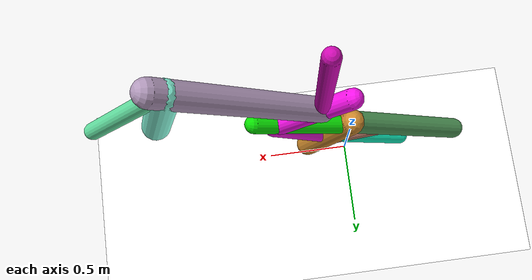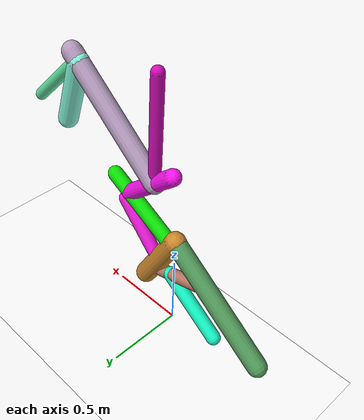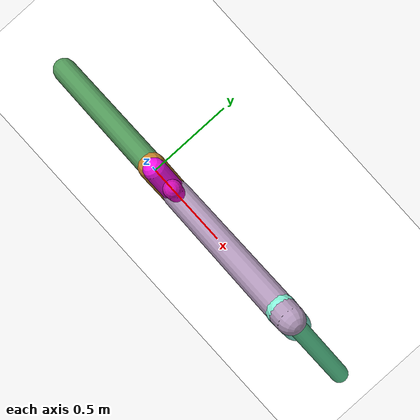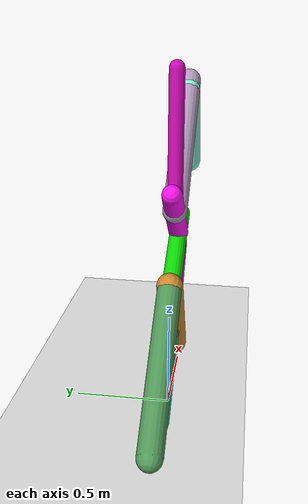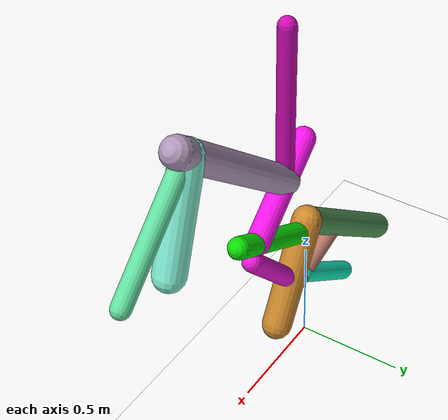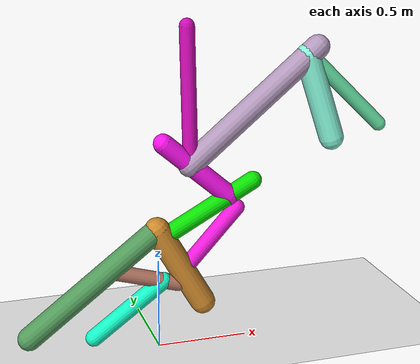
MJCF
<mujoco model="morphology">
  <option timestep="0.01"/>
  <default>
    <default class="/"/>
    <default class="0/"/>
    <default class="0/1/"/>
    <default class="0/1/2/"/>
    <default class="0/1/2/3/"/>
    <default class="0/1/2/3/4/"/>
    <default class="0/1/2/3/5/"/>
    <default class="0/1/2/3/5/6/"/>
    <default class="0/1/2/3/5/7/"/>
    <default class="0/1/8/"/>
    <default class="0/9/"/>
    <default class="0/9/10/"/>
  </default>
  <asset>
    <texture name="texplane" type="2d" builtin="checker" rgb1="0.10000000000000001 0.20000000000000001 0.29999999999999999" rgb2="0.20000000000000001 0.29999999999999999 0.40000000000000002" width="300" height="300"/>
    <material name="MatPlane" class="/" texture="texplane" texrepeat="20 20" specular="1" shininess="1" reflectance="0.5"/>
  </asset>
  <worldbody>
    <light name="//unnamed_light_0" class="/" directional="true" pos="0 0 1.5" dir="0 0 -1.3" cutoff="100" exponent="1" diffuse="1 1 1" specular="0.10000000000000001 0.10000000000000001 0.10000000000000001"/>
    <geom name="ground" class="/" type="plane" size="15 15 0.5" material="MatPlane" rgba="1 1 1 1"/>
    <site name="body" class="/" size="9.9999999999999995e-07 9.9999999999999995e-07 9.9999999999999995e-07" pos="0 0 0.68278620243072508"/>
    <body pos="0 0 0.68278620243072508" name="0/">
      <joint name="0/rootx/" class="/" type="slide" axis="1 0 0" limited="false" stiffness="0" armature="0" damping="0"/>
      <joint name="0/rootz/" class="/" type="slide" axis="0 0 1" limited="false" stiffness="0" armature="0" damping="0"/>
      <joint name="0/rooty/" class="/" type="hinge" axis="0 1 0" limited="false" stiffness="0" armature="0" damping="0"/>
      <geom name="0/geom" class="0/" type="capsule" contype="1" conaffinity="1" condim="3" size="0.063507581174739453" rgba="0.31382172410303311 0.59196096705202472 0.34708102832739662 1" friction="0.59999999999999998 0.10000000000000001 0.10000000000000001" fromto="0 0 0 -0.70965696625477048 0 -0.53812435707425643"/>
      <site name="0/end0" class="0/" size="0.0050000000000000001" pos="-0.70965696625477048 0 -0.53812435707425643"/>
      <site name="0/attach1" class="0/" size="9.9999999999999995e-07 9.9999999999999995e-07 9.9999999999999995e-07" pos="-0.0024416728825154004 0 -0.0018514912310711269"/>
      <body pos="-0.0024416728825154004 0 -0.0018514912310711269" name="0/1/">
        <joint name="0/1/joint/" class="0/" type="hinge" axis="0 1 0" limited="true" range="-37.99152996907884 37.99152996907884"/>
        <geom name="0/1/geom" class="0/1/" type="capsule" contype="1" conaffinity="1" condim="3" size="0.069586543019788352" rgba="0.79393915050148534 0.52989986347276408 0.17361670515935201 1" friction="0.59999999999999998 0.10000000000000001 0.10000000000000001" fromto="0 0 0 0.25350652672858942 0 -0.44455246952646815"/>
        <site name="0/1/end1" class="0/1/" size="0.0050000000000000001" pos="0.25350652672858942 0 -0.44455246952646815"/>
        <site name="0/1/attach2" class="0/1/" size="9.9999999999999995e-07 9.9999999999999995e-07 9.9999999999999995e-07" pos="0.027680297788266091 0 -0.048540544094851416"/>
        <body pos="0.027680297788266091 0 -0.048540544094851416" name="0/1/2/">
          <joint name="0/1/2/joint/" class="0/1/" type="hinge" axis="0 1 0" limited="true" range="-47.914518399586015 47.914518399586015"/>
          <geom name="0/1/2/geom" class="0/1/2/" type="capsule" contype="1" conaffinity="1" condim="3" size="0.049577674123155162" rgba="0.040091898239932311 0.86729099026450307 0.013545073563749122 1" friction="0.59999999999999998 0.10000000000000001 0.10000000000000001" fromto="0 0 0 0.51063731208316732 0 0.27837166911591771"/>
          <site name="0/1/2/end2" class="0/1/2/" size="0.0050000000000000001" pos="0.51063731208316732 0 0.27837166911591771"/>
          <site name="0/1/2/attach3" class="0/1/2/" size="9.9999999999999995e-07 9.9999999999999995e-07 9.9999999999999995e-07" pos="0.37573267965194262 0 0.2048290062263852"/>
          <body pos="0.37573267965194262 0 0.2048290062263852" name="0/1/2/3/">
            <geom name="0/1/2/3/geom" class="0/1/2/3/" type="capsule" contype="1" conaffinity="1" condim="3" size="0.053891395611543345" rgba="0.95929449712994219 0.069372621284050195 0.90381818680179504 1" friction="0.59999999999999998 0.10000000000000001 0.10000000000000001" fromto="0 0 0 -0.36389154934683116 0 0.31736719148704529"/>
            <site name="0/1/2/3/end3" class="0/1/2/3/" size="0.0050000000000000001" pos="-0.36389154934683116 0 0.31736719148704529"/>
            <site name="0/1/2/3/attach4" class="0/1/2/3/" size="9.9999999999999995e-07 9.9999999999999995e-07 9.9999999999999995e-07" pos="-0.21579512642841805 0 0.18820523129517214"/>
            <body pos="-0.21579512642841805 0 0.18820523129517214" name="0/1/2/3/4/">
              <joint name="0/1/2/3/4/joint/" class="0/1/2/3/" type="hinge" axis="0 1 0" limited="true" range="-63.25961408843915 63.25961408843915"/>
              <geom name="0/1/2/3/4/geom" class="0/1/2/3/4/" type="capsule" contype="1" conaffinity="1" condim="3" size="0.040459765490075024" rgba="0.80719747843233913 0.040216207106210544 0.69790287775725912 1" friction="0.59999999999999998 0.10000000000000001 0.10000000000000001" fromto="0 0 0 -0.01619142745252411 0 0.73629021318143839"/>
              <site name="0/1/2/3/4/end4" class="0/1/2/3/4/" size="0.0050000000000000001" pos="-0.01619142745252411 0 0.73629021318143839"/>
            </body>
            <site name="0/1/2/3/attach5" class="0/1/2/3/" size="9.9999999999999995e-07 9.9999999999999995e-07 9.9999999999999995e-07" pos="-0.217933971126854 0 0.19007061985994642"/>
            <body pos="-0.217933971126854 0 0.19007061985994642" name="0/1/2/3/5/">
              <joint name="0/1/2/3/5/joint/" class="0/1/2/3/" type="hinge" axis="0 1 0" limited="true" range="-69.186504279573469 69.186504279573469"/>
              <geom name="0/1/2/3/5/geom" class="0/1/2/3/5/" type="capsule" contype="1" conaffinity="1" condim="3" size="0.065194665166528748" rgba="0.68842237902329317 0.59279516826443124 0.7251341408540275 1" friction="0.59999999999999998 0.10000000000000001 0.10000000000000001" fromto="0 0 0 0.70988098558974544 0 0.59159054354217289"/>
              <site name="0/1/2/3/5/end5" class="0/1/2/3/5/" size="0.0050000000000000001" pos="0.70988098558974544 0 0.59159054354217289"/>
              <site name="0/1/2/3/5/attach6" class="0/1/2/3/5/" size="9.9999999999999995e-07 9.9999999999999995e-07 9.9999999999999995e-07" pos="0.65306695704590279 0 0.54424367454673162"/>
              <body pos="0.65306695704590279 0 0.54424367454673162" name="0/1/2/3/5/6/">
                <geom name="0/1/2/3/5/6/geom" class="0/1/2/3/5/6/" type="capsule" contype="1" conaffinity="1" condim="3" size="0.06775674699424955" rgba="0.51430834499222922 0.94543490255033891 0.83658879257724894 1" friction="0.59999999999999998 0.10000000000000001 0.10000000000000001" fromto="0 0 0 0.15473185094853581 0 -0.45737401657261623"/>
                <site name="0/1/2/3/5/6/end6" class="0/1/2/3/5/6/" size="0.0050000000000000001" pos="0.15473185094853581 0 -0.45737401657261623"/>
              </body>
              <site name="0/1/2/3/5/attach7" class="0/1/2/3/5/" size="9.9999999999999995e-07 9.9999999999999995e-07 9.9999999999999995e-07" pos="0.66513654873430794 0 0.55430205961721468"/>
              <body pos="0.66513654873430794 0 0.55430205961721468" name="0/1/2/3/5/7/">
                <joint name="0/1/2/3/5/7/joint/" class="0/1/2/3/5/" type="hinge" axis="0 1 0" limited="true" range="-31.396499213853385 31.396499213853385"/>
                <geom name="0/1/2/3/5/7/geom" class="0/1/2/3/5/7/" type="capsule" contype="1" conaffinity="1" condim="3" size="0.040649974638004197" rgba="0.37823468615007083 0.86419817977078295 0.61864918860811569 1" friction="0.59999999999999998 0.10000000000000001 0.10000000000000001" fromto="0 0 0 0.42289926758935947 0 -0.40939519771057076"/>
                <site name="0/1/2/3/5/7/end7" class="0/1/2/3/5/7/" size="0.0050000000000000001" pos="0.42289926758935947 0 -0.40939519771057076"/>
              </body>
            </body>
          </body>
        </body>
        <site name="0/1/attach8" class="0/1/" size="9.9999999999999995e-07 9.9999999999999995e-07 9.9999999999999995e-07" pos="0.14102277077938599 0 -0.24729943571259913"/>
        <body pos="0.14102277077938599 0 -0.24729943571259913" name="0/1/8/">
          <joint name="0/1/8/joint/" class="0/1/" type="hinge" axis="0 1 0" limited="true" range="-68.085710890027059 68.085710890027059"/>
          <geom name="0/1/8/geom" class="0/1/8/" type="capsule" contype="1" conaffinity="1" condim="3" size="0.044772886027756101" rgba="0.91651111404108143 0.094350577365756694 0.83961336781858475 1" friction="0.59999999999999998 0.10000000000000001 0.10000000000000001" fromto="0 0 0 0.3050699656863447 0 0.33169989540331679"/>
          <site name="0/1/8/end8" class="0/1/8/" size="0.0050000000000000001" pos="0.3050699656863447 0 0.33169989540331679"/>
        </body>
      </body>
      <site name="0/attach9" class="0/" size="9.9999999999999995e-07 9.9999999999999995e-07 9.9999999999999995e-07" pos="-0.27231399216036484 0 -0.20649243074013912"/>
      <body pos="-0.27231399216036484 0 -0.20649243074013912" name="0/9/">
        <joint name="0/9/joint/" class="0/" type="hinge" axis="0 1 0" limited="true" range="-41.857608022685007 41.857608022685007"/>
        <geom name="0/9/geom" class="0/9/" type="capsule" contype="1" conaffinity="1" condim="3" size="0.042798141390461314" rgba="0.70346408623820389 0.46174975016217301 0.38425151924413781 1" friction="0.59999999999999998 0.10000000000000001 0.10000000000000001" fromto="0 0 0 0.38481790367411772 0 -0.11583208130652223"/>
        <site name="0/9/end9" class="0/9/" size="0.0050000000000000001" pos="0.38481790367411772 0 -0.11583208130652223"/>
        <site name="0/9/attach10" class="0/9/" size="9.9999999999999995e-07 9.9999999999999995e-07 9.9999999999999995e-07" pos="0.30088001046610724 0 -0.090566362695357769"/>
        <body pos="0.30088001046610724 0 -0.090566362695357769" name="0/9/10/">
          <joint name="0/9/10/joint/" class="0/9/" type="hinge" axis="0 1 0" limited="true" range="-35.615364161881736 35.615364161881736"/>
          <geom name="0/9/10/geom" class="0/9/10/" type="capsule" contype="1" conaffinity="1" condim="3" size="0.046882817201885946" rgba="0.06972367245074429 0.93940471372594103 0.75297982249078543 1" friction="0.59999999999999998 0.10000000000000001 0.10000000000000001" fromto="0 0 0 -0.39199039171091926 0 -0.28572739412957809"/>
          <site name="0/9/10/end10" class="0/9/10/" size="0.0050000000000000001" pos="-0.39199039171091926 0 -0.28572739412957809"/>
        </body>
      </body>
      <camera name="0/side" class="0/" mode="trackcom" pos="0.40000000000000002 -4 0.20000000000000001" quat="0.70699999999999996 0.70699999999999996 0 0"/>
    </body>
  </worldbody>
  <actuator>
    <motor name="0/1/motor" class="0/1/" ctrllimited="true" ctrlrange="-1 1" gear="53" joint="0/1/joint/"/>
    <motor name="0/1/2/motor" class="0/1/2/" ctrllimited="true" ctrlrange="-1 1" gear="65" joint="0/1/2/joint/"/>
    <motor name="0/1/2/3/4/motor" class="0/1/2/3/4/" ctrllimited="true" ctrlrange="-1 1" gear="88" joint="0/1/2/3/4/joint/"/>
    <motor name="0/1/2/3/5/motor" class="0/1/2/3/5/" ctrllimited="true" ctrlrange="-1 1" gear="72" joint="0/1/2/3/5/joint/"/>
    <motor name="0/1/2/3/5/7/motor" class="0/1/2/3/5/7/" ctrllimited="true" ctrlrange="-1 1" gear="84" joint="0/1/2/3/5/7/joint/"/>
    <motor name="0/1/8/motor" class="0/1/8/" ctrllimited="true" ctrlrange="-1 1" gear="60" joint="0/1/8/joint/"/>
    <motor name="0/9/motor" class="0/9/" ctrllimited="true" ctrlrange="-1 1" gear="83" joint="0/9/joint/"/>
    <motor name="0/9/10/motor" class="0/9/10/" ctrllimited="true" ctrlrange="-1 1" gear="67" joint="0/9/10/joint/"/>
  </actuator>
  <sensor>
    <subtreelinvel name="velocity" body="0/"/>
  </sensor>
</mujoco>
